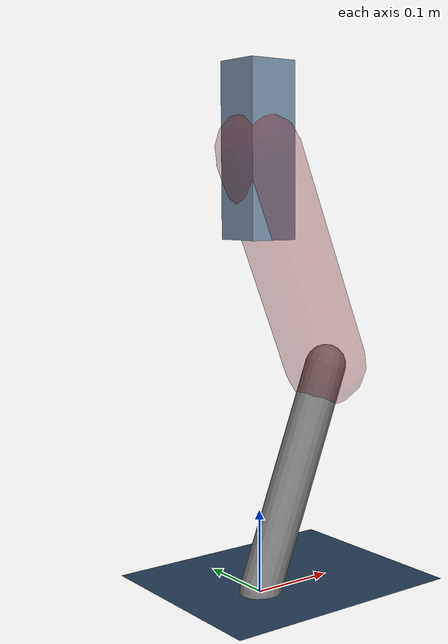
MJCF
<mujoco model="Hopper2D">
	<compiler inertiafromgeom="true" angle="radian" />
	<option timestep="0.001" integrator="implicit" cone="elliptic" solver="Newton" tolerance="1e-10" />

	<default>
		<geom contype="1" conaffinity="1" condim="3" friction="2 0.005 0.0001" solref="0.005 1" />
		<joint limited="true" damping="0.1" />
	</default>

	<asset>
		<texture name="skybox" type="skybox" builtin="gradient" rgb1=".4 .6 .8" rgb2="0 0 0" width="800" height="800" />
		<texture name="grid" type="2d" builtin="checker" rgb1=".1 .2 .3" rgb2=".2 .3 .4" width="300" height="300" mark="edge" markrgb=".2 .3 .4" />
		<material name="ground" texture="grid" texrepeat="1 1" texuniform="true" reflectance="0.1" />
		<material name="leg" rgba="0.5 0.6 0.7 1" />
	</asset>

	<worldbody>

		<geom name="floor" type="plane" size="5 5 0.25" material="ground" />

		<light directional="false" diffuse="0.8 0.8 0.8" specular="0.3 0.3 0.3" pos="0 0 2" dir="0 0 -1" />
		<light mode="targetbodycom" target="base" directional="false" diffuse="0.8 0.8 0.8" specular="0.3 0.3 0.3" pos="0 0 2" dir="0 0 -1" />

		<camera name="fixed" pos="0 -2 1" xyaxes="1 0 0 0 0 1" />
		<camera name="tracking" mode="trackcom" pos="0 -3 1" />

		<body name="root" pos="0 0 0.5206582812806455">
			<joint name="slide_x" type="slide" axis="1 0 0" range="-100 100" />
			<joint name="slide_z" type="slide" axis="0 0 1" range="0 10" />

			<body name="base" pos="0 0 0">
				<geom name="torso" type="box" size="0.03 0.03 0.1" mass="3.289" material="leg" />

				<body name="link1" pos="0 0 0" euler="0 1.1915712493921804 0">
					<joint type="hinge" axis="0 -1 0" pos="0 0 0" name="hinge1" limited="true" range="-3.14 3.14" stiffness="0" damping="0.1" />
					<geom name="thigh" type="capsule" fromto="0 0 0 0.27408696460262477 0 0" size="0.05" rgba="0.5 0 0 0.3" mass="0.9194348044270868" />

					<body name="link2" pos="0.27408696460262477 0 0" euler="0 0.7435874505212676 0">
						<joint type="hinge" axis="0 -1 0" pos="0 0 0" name="hinge2" limited="true" range="-3.14 3.14" stiffness="0" damping="0.1" />
						<geom name="shank" type="capsule" fromto="0 0 0 0.28473737987846703 0 0" size="0.025" mass="0.4709899039027736" />

					</body>
				</body>
			</body>
		</body>
	</worldbody>

	<actuator>
		<motor name="torque1" joint="hinge1" ctrlrange="-119.45104233657935 119.45104233657935" ctrllimited="true" gear="1" />
		<motor name="torque2" joint="hinge2" ctrlrange="-103.17032645689278 103.17032645689278" ctrllimited="true" gear="1" />
	</actuator>
</mujoco>
